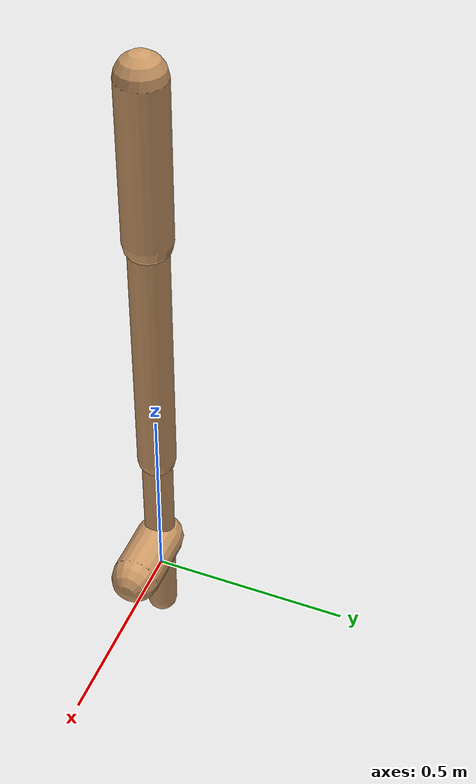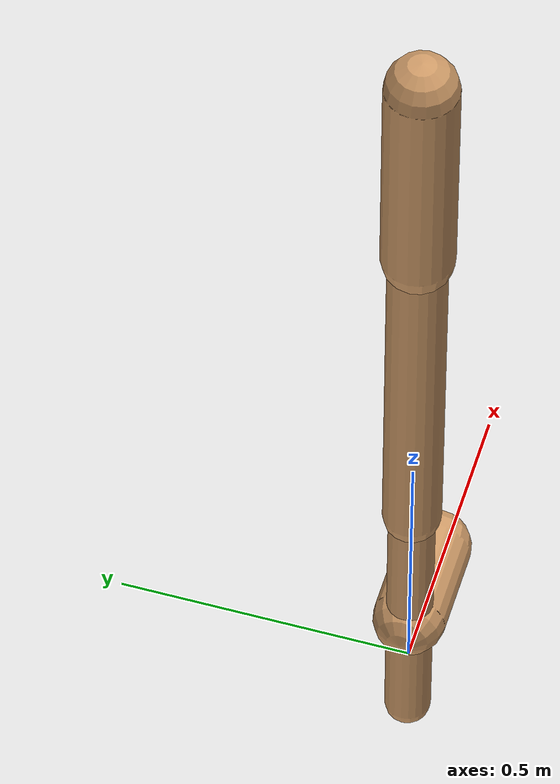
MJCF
<mujoco model="walker2d">
  <compiler angle="degree" coordinate="global" inertiafromgeom="true" />
  <default>
    <joint armature="0.01" damping=".1" limited="true" />
    <geom conaffinity="0" condim="3" contype="1" density="1000" friction="0.8 .1 .1" rgba="0.8 0.6 .4 1" />
  </default>
  <option integrator="RK4" timestep="0.002" />
  <worldbody>

    <body name="torso" pos="0 0 0.446159008459855">
      <joint armature="0" axis="1 0 0" damping="0" limited="false" name="ignorex" pos="0 0 0" stiffness="0" type="slide" />
      <joint armature="0" axis="0 0 1" damping="0" limited="false" name="ignorez" pos="0 0 0" ref="1.25" stiffness="0" type="slide" />
      <joint armature="0" axis="0 1 0" damping="0" limited="false" name="ignorey" pos="0 0 0" stiffness="0" type="hinge" />
      <geom fromto="0 0 1.45 0 0 1.05" name="torso_geom" size="0.05957782068863268" type="capsule" />
      <body name="thigh">
        <joint axis="0 -1 0" name="thigh_joint" pos="0 0 1.05" range="-150 0" type="hinge" />
        <geom fromto="0.0 0.0 1.05 0.0 0.0 0.3886615223084897" name="thigh_geom" size="0.048616728899862224" type="capsule" />
        <body name="leg" pos="0.0 0.0 -0.21133847769151026">
          <joint axis="0 -1 0" name="leg_joint" pos="0 0 0.6" range="-150 0" type="hinge" />
          <geom fromto="0.0 0.0 0.6 0.0 0.0 -0.13482053076834472" name="leg_geom" size="0.038893383119889775" type="capsule" />
          <body name="foot" pos="0.0 0.0 -0.23482053076834472">
            <joint axis="0 -1 0" name="foot_joint" pos="0 0 0.1" range="-45 45" type="hinge" />
            <geom fromto="0.0 0.0 0.10000000000000002 0.1548580620483645 0.0 0.10000000000000002" name="foot_geom" size="0.061458378240960246" type="capsule" />
          </body>
        </body>
      </body>

      <body name="thigh_left">
        <joint axis="0 -1 0" name="thigh_left_joint" pos="0 0 1.05" range="-150 0" type="hinge" />
        <geom fromto="0.0 0.0 1.05 0.0 0.0 0.3886615223084897" name="thigh_left_geom" rgba=".7 .3 .6 1" size="0.048616728899862224" type="capsule" />
        <body name="leg_left" pos="0.0 0.0 -0.21133847769151026">
          <joint axis="0 -1 0" name="leg_left_joint" pos="0 0 0.6" range="-150 0" type="hinge" />
          <geom fromto="0.0 0.0 0.6 0.0 0.0 -0.13482053076834472" name="leg_left_geom" rgba=".7 .3 .6 1" size="0.038893383119889775" type="capsule" />
          <body name="foot_left" pos="0.0 0.0 -0.23482053076834472">
            <joint axis="0 -1 0" name="foot_left_joint" pos="0 0 0.1" range="-45 45" type="hinge" />
            <geom fromto="0.0 0.0 0.10000000000000002 0.1548580620483645 0.0 0.10000000000000002" name="foot_left_geom" rgba=".7 .3 .6 1" size="0.061458378240960246" type="capsule" />
          </body>
        </body>
      </body>
    </body>
  </worldbody>
  <actuator>

    <motor ctrllimited="true" ctrlrange="-1.0 1.0" gear="100" joint="thigh_joint" />
    <motor ctrllimited="true" ctrlrange="-1.0 1.0" gear="100" joint="leg_joint" />
    <motor ctrllimited="true" ctrlrange="-1.0 1.0" gear="100" joint="foot_joint" />
    <motor ctrllimited="true" ctrlrange="-1.0 1.0" gear="100" joint="thigh_left_joint" />
    <motor ctrllimited="true" ctrlrange="-1.0 1.0" gear="100" joint="leg_left_joint" />
    <motor ctrllimited="true" ctrlrange="-1.0 1.0" gear="100" joint="foot_left_joint" />

  </actuator>
</mujoco>
